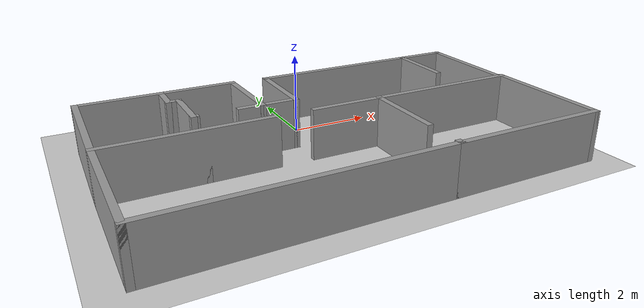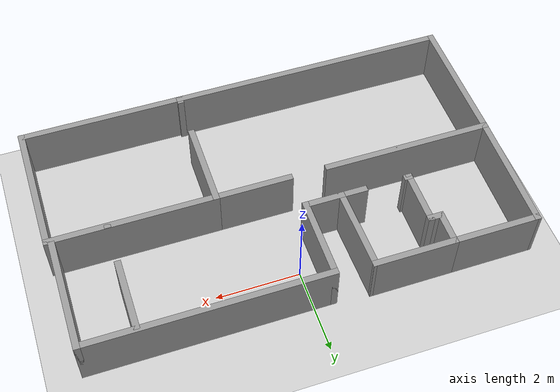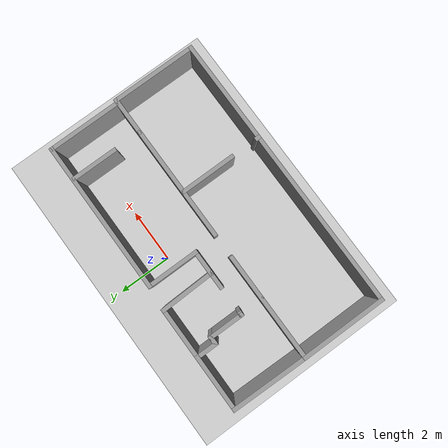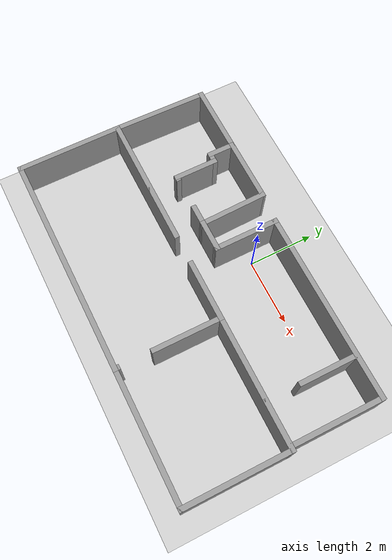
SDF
<?xml version='1.0'?>
<sdf version='1.7'>
  <world name="empty">
    <physics name="1ms" type="ignored">
      <max_step_size>0.001</max_step_size>
      <real_time_factor>1.0</real_time_factor>
    </physics>
    <plugin
      filename="gz-sim-physics-system"
      name="gz::sim::systems::Physics">
    </plugin>
    <plugin
      filename="gz-sim-user-commands-system"
      name="gz::sim::systems::UserCommands">
    </plugin>
    <plugin
      filename="gz-sim-scene-broadcaster-system"
      name="gz::sim::systems::SceneBroadcaster">
    </plugin>
    <plugin
      filename="gz-sim-sensors-system"
      name="gz::sim::systems::Sensors">
      <render_engine>ogre2</render_engine>
    </plugin>
    <plugin
      filename="gz-sim-contact-system"
      name="gz::sim::systems::Contact">
    </plugin>
    <light type="directional" name="sun">
      <cast_shadows>false</cast_shadows>
      <pose>0 0 10 0 0 0</pose>
      <diffuse>0.8 0.8 0.8 1</diffuse>
      <specular>0.2 0.2 0.2 1</specular>
      <attenuation>
        <range>1000</range>
        <constant>0.9</constant>
        <linear>0.01</linear>
        <quadratic>0.001</quadratic>
      </attenuation>
      <direction>-0.5 0.1 -0.9</direction>
    </light>

    <model name="ground_plane">
      <static>true</static>
      <link name="link">
        <collision name="collision">
          <geometry>
            <plane>
              <normal>0 0 1</normal>
              <size>100 100</size>
            </plane>
          </geometry>
        </collision>
        <visual name="visual">
          <geometry>
            <plane>
              <normal>0 0 1</normal>
              <size>100 100</size>
            </plane>
          </geometry>
          <material>
            <script>
              <uri>file://media/materials/scripts/gazebo.material</uri>
            <name>Gazebo/Grey</name>
            </script>
            <ambient>0.8 0.8 0.8 1</ambient>
            <diffuse>0.8 0.8 0.8 1</diffuse>
            <specular>0.8 0.8 0.8 1</specular>
          </material>
        </visual>
      </link>
    </model>

    <model name='living_room'>
      <static>true</static>
      <cast_shadows>false</cast_shadows>
      <pose>0 -1.66125 0 0 -0 0</pose>
      <link name='Wall_10'>
        <collision name='Wall_10_Collision'>
          <geometry>
            <box>
              <size>4.1 0.15 1.25</size>
            </box>
          </geometry>
          <pose>0 0 0.625 0 -0 0</pose>
        </collision>
        <visual name='Wall_10_Visual'>
          <pose>0 0 0.625 0 -0 0</pose>
          <geometry>
            <box>
              <size>4.1 0.15 1.25</size>
            </box>
          </geometry>
          <material>
            <script>
              <uri>file://media/materials/scripts/gazebo.material</uri>
              <name>Gazebo/Grey</name>
            </script>
            <ambient>1 1 1 1</ambient>
          </material>
          <meta>
            <layer>0</layer>
          </meta>
        </visual>
        <pose>-3.27433 -0.1475 0 0 -0 0</pose>
      </link>
      <link name='Wall_17'>
        <collision name='Wall_17_Collision'>
          <geometry>
            <box>
              <size>6.8 0.15 1.25</size>
            </box>
          </geometry>
          <pose>0 0 0.625 0 -0 0</pose>
        </collision>
        <visual name='Wall_17_Visual'>
          <pose>0 0 0.625 0 -0 0</pose>
          <geometry>
            <box>
              <size>6.8 0.15 1.25</size>
            </box>
          </geometry>
          <material>
            <script>
              <uri>file://media/materials/scripts/gazebo.material</uri>
              <name>Gazebo/Grey</name>
            </script>
            <ambient>1 1 1 1</ambient>
          </material>
          <meta>
            <layer>0</layer>
          </meta>
        </visual>
        <pose>-1.92433 -3.2475 0 0 -0 0</pose>
      </link>
      <link name='Wall_20'>
        <pose>1.40067 -1.6975 0 0 -0 1.5708</pose>
        <visual name='Wall_20_Visual_0'>
          <pose>-1.5175 0 0.625 0 -0 0</pose>
          <geometry>
            <box>
              <size>0.215 0.15 1.25</size>
            </box>
          </geometry>
          <material>
            <script>
              <uri>file://media/materials/scripts/gazebo.material</uri>
              <name>Gazebo/Grey</name>
            </script>
            <ambient>1 1 1 1</ambient>
          </material>
          <meta>
            <layer>0</layer>
          </meta>
        </visual>
        <collision name='Wall_20_Collision_0'>
          <geometry>
            <box>
              <size>0.215 0.15 1.25</size>
            </box>
          </geometry>
          <pose>-1.5175 0 0.625 0 -0 0</pose>
        </collision>
        <visual name='Wall_20_Visual_1'>
          <pose>0.5575 0 0.625 0 -0 0</pose>
          <geometry>
            <box>
              <size>2.135 0.15 1.25</size>
            </box>
          </geometry>
          <material>
            <script>
              <uri>file://media/materials/scripts/gazebo.material</uri>
              <name>Gazebo/Grey</name>
            </script>
            <ambient>1 1 1 1</ambient>
          </material>
          <meta>
            <layer>0</layer>
          </meta>
        </visual>
        <collision name='Wall_20_Collision_1'>
          <geometry>
            <box>
              <size>2.135 0.15 1.25</size>
            </box>
          </geometry>
          <pose>0.5575 0 0.625 0 -0 0</pose>
        </collision>
      </link>
      <link name='Wall_21'>
        <collision name='Wall_21_Collision'>
          <geometry>
            <box>
              <size>1.9 0.15 1.25</size>
            </box>
          </geometry>
          <pose>0 0 0.625 0 -0 0</pose>
        </collision>
        <visual name='Wall_21_Visual'>
          <pose>0 0 0.625 0 -0 0</pose>
          <geometry>
            <box>
              <size>1.9 0.15 1.25</size>
            </box>
          </geometry>
          <material>
            <script>
              <uri>file://media/materials/scripts/gazebo.material</uri>
              <name>Gazebo/Grey</name>
            </script>
            <ambient>1 1 1 1</ambient>
          </material>
          <meta>
            <layer>0</layer>
          </meta>
        </visual>
        <pose>0.525668 -0.1475 0 0 -0 3.14159</pose>
      </link>
      <link name='Wall_23'>
        <collision name='Wall_23_Collision'>
          <geometry>
            <box>
              <size>4 0.15 1.25</size>
            </box>
          </geometry>
          <pose>0 0 0.625 0 -0 0</pose>
        </collision>
        <visual name='Wall_23_Visual'>
          <pose>0 0 0.625 0 -0 0</pose>
          <geometry>
            <box>
              <size>4 0.15 1.25</size>
            </box>
          </geometry>
          <material>
            <script>
              <uri>file://media/materials/scripts/gazebo.material</uri>
              <name>Gazebo/Grey</name>
            </script>
            <ambient>1 1 1 1</ambient>
          </material>
          <meta>
            <layer>0</layer>
          </meta>
        </visual>
        <pose>3.32567 -3.2475 0 0 -0 0</pose>
      </link>
      <link name='Wall_24'>
        <collision name='Wall_24_Collision'>
          <geometry>
            <box>
              <size>3.25 0.15 1.25</size>
            </box>
          </geometry>
          <pose>0 0 0.625 0 -0 0</pose>
        </collision>
        <visual name='Wall_24_Visual'>
          <pose>0 0 0.625 0 -0 0</pose>
          <geometry>
            <box>
              <size>3.25 0.15 1.25</size>
            </box>
          </geometry>
          <material>
            <script>
              <uri>file://media/materials/scripts/gazebo.material</uri>
              <name>Gazebo/Grey</name>
            </script>
            <ambient>1 1 1 1</ambient>
          </material>
          <meta>
            <layer>0</layer>
          </meta>
        </visual>
        <pose>5.25067 -1.6975 0 0 -0 1.5708</pose>
      </link>
      <link name='Wall_25'>
        <collision name='Wall_25_Collision'>
          <geometry>
            <box>
              <size>4 0.15 1.25</size>
            </box>
          </geometry>
          <pose>0 0 0.625 0 -0 0</pose>
        </collision>
        <visual name='Wall_25_Visual'>
          <pose>0 0 0.625 0 -0 0</pose>
          <geometry>
            <box>
              <size>4 0.15 1.25</size>
            </box>
          </geometry>
          <material>
            <script>
              <uri>file://media/materials/scripts/gazebo.material</uri>
              <name>Gazebo/Grey</name>
            </script>
            <ambient>1 1 1 1</ambient>
          </material>
          <meta>
            <layer>0</layer>
          </meta>
        </visual>
        <pose>3.32567 -0.1475 0 0 -0 3.14159</pose>
      </link>
      <link name='Wall_33'>
        <pose>-2.12433 0.7025 0 0 -0 3.14159</pose>
        <visual name='Wall_33_Visual_0'>
          <pose>-0.551716 0 0.625 0 -0 0</pose>
          <geometry>
            <box>
              <size>0.696567 0.15 1.25</size>
            </box>
          </geometry>
          <material>
            <script>
              <uri>file://media/materials/scripts/gazebo.material</uri>
              <name>Gazebo/Grey</name>
            </script>
            <ambient>1 1 1 1</ambient>
          </material>
          <meta>
            <layer>0</layer>
          </meta>
        </visual>
        <collision name='Wall_33_Collision_0'>
          <geometry>
            <box>
              <size>0.696567 0.15 1.25</size>
            </box>
          </geometry>
          <pose>-0.551716 0 0.625 0 -0 0</pose>
        </collision>
        <visual name='Wall_33_Visual_1'>
          <pose>0.798284 0 0.625 0 -0 0</pose>
          <geometry>
            <box>
              <size>0.203433 0.15 1.25</size>
            </box>
          </geometry>
          <material>
            <script>
              <uri>file://media/materials/scripts/gazebo.material</uri>
              <name>Gazebo/Grey</name>
            </script>
            <ambient>1 1 1 1</ambient>
          </material>
          <meta>
            <layer>0</layer>
          </meta>
        </visual>
        <collision name='Wall_33_Collision_1'>
          <geometry>
            <box>
              <size>0.203433 0.15 1.25</size>
            </box>
          </geometry>
          <pose>0.798284 0 0.625 0 -0 0</pose>
        </collision>
      </link>
      <link name='Wall_35'>
        <pose>-2.94933 0.2775 0 0 -0 -1.5708</pose>
        <visual name='Wall_35_Visual_0'>
          <pose>-0.477932 0 0.625 0 -0 0</pose>
          <geometry>
            <box>
              <size>0.044137 0.15 1.25</size>
            </box>
          </geometry>
          <material>
            <script>
              <uri>file://media/materials/scripts/gazebo.material</uri>
              <name>Gazebo/Grey</name>
            </script>
            <ambient>1 1 1 1</ambient>
          </material>
          <meta>
            <layer>0</layer>
          </meta>
        </visual>
        <collision name='Wall_35_Collision_0'>
          <geometry>
            <box>
              <size>0.044137 0.15 1.25</size>
            </box>
          </geometry>
          <pose>-0.477932 0 0.625 0 -0 0</pose>
        </collision>
        <visual name='Wall_35_Visual_1'>
          <pose>0.472068 0 0.625 0 -0 0</pose>
          <geometry>
            <box>
              <size>0.055863 0.15 1.25</size>
            </box>
          </geometry>
          <material>
            <script>
              <uri>file://media/materials/scripts/gazebo.material</uri>
              <name>Gazebo/Grey</name>
            </script>
            <ambient>1 1 1 1</ambient>
          </material>
          <meta>
            <layer>0</layer>
          </meta>
        </visual>
        <collision name='Wall_35_Collision_1'>
          <geometry>
            <box>
              <size>0.055863 0.15 1.25</size>
            </box>
          </geometry>
          <pose>0.472068 0 0.625 0 -0 0</pose>
        </collision>
      </link>
      <link name='Wall_38'>
        <collision name='Wall_38_Collision'>
          <geometry>
            <box>
              <size>1.36 0.15 1.25</size>
            </box>
          </geometry>
          <pose>0 0 0.625 0 -0 0</pose>
        </collision>
        <visual name='Wall_38_Visual'>
          <pose>0 0 0.625 0 -0 0</pose>
          <geometry>
            <box>
              <size>1.36 0.15 1.25</size>
            </box>
          </geometry>
          <material>
            <script>
              <uri>file://media/materials/scripts/gazebo.material</uri>
              <name>Gazebo/Grey</name>
            </script>
            <ambient>1 1 1 1</ambient>
          </material>
          <meta>
            <layer>0</layer>
          </meta>
        </visual>
        <pose>-2.94933 1.3075 0 0 -0 1.5708</pose>
      </link>
      <link name='Wall_42'>
        <collision name='Wall_42_Collision'>
          <geometry>
            <box>
              <size>0.4 0.15 1.25</size>
            </box>
          </geometry>
          <pose>0 0 0.625 0 -0 0</pose>
        </collision>
        <visual name='Wall_42_Visual'>
          <pose>0 0 0.625 0 -0 0</pose>
          <geometry>
            <box>
              <size>0.4 0.15 1.25</size>
            </box>
          </geometry>
          <material>
            <script>
              <uri>file://media/materials/scripts/gazebo.material</uri>
              <name>Gazebo/Grey</name>
            </script>
            <ambient>1 1 1 1</ambient>
          </material>
          <meta>
            <layer>0</layer>
          </meta>
        </visual>
        <pose>-3.07433 1.9125 0 0 -0 3.14159</pose>
      </link>
      <link name='Wall_45'>
        <collision name='Wall_45_Collision'>
          <geometry>
            <box>
              <size>0.87 0.15 1.25</size>
            </box>
          </geometry>
          <pose>0 0 0.625 0 -0 0</pose>
        </collision>
        <visual name='Wall_45_Visual'>
          <pose>0 0 0.625 0 -0 0</pose>
          <geometry>
            <box>
              <size>0.87 0.15 1.25</size>
            </box>
          </geometry>
          <material>
            <script>
              <uri>file://media/materials/scripts/gazebo.material</uri>
              <name>Gazebo/Grey</name>
            </script>
            <ambient>1 1 1 1</ambient>
          </material>
          <meta>
            <layer>0</layer>
          </meta>
        </visual>
        <pose>-3.19933 2.2725 0 0 -0 1.5708</pose>
      </link>
      <link name='Wall_52'>
        <collision name='Wall_52_Collision'>
          <geometry>
            <box>
              <size>2.15 0.15 1.25</size>
            </box>
          </geometry>
          <pose>0 0 0.625 0 -0 0</pose>
        </collision>
        <visual name='Wall_52_Visual'>
          <pose>0 0 0.625 0 -0 0</pose>
          <geometry>
            <box>
              <size>2.15 0.15 1.25</size>
            </box>
          </geometry>
          <material>
            <script>
              <uri>file://media/materials/scripts/gazebo.material</uri>
              <name>Gazebo/Grey</name>
            </script>
            <ambient>1 1 1 1</ambient>
          </material>
          <meta>
            <layer>0</layer>
          </meta>
        </visual>
        <pose>-4.19933 2.6325 0 0 -0 3.14159</pose>
      </link>
      <link name='Wall_54'>
        <collision name='Wall_54_Collision'>
          <geometry>
            <box>
              <size>2.93045 0.15 1.25</size>
            </box>
          </geometry>
          <pose>0 0 0.625 0 -0 0</pose>
        </collision>
        <visual name='Wall_54_Visual'>
          <pose>0 0 0.625 0 -0 0</pose>
          <geometry>
            <box>
              <size>2.93045 0.15 1.25</size>
            </box>
          </geometry>
          <material>
            <script>
              <uri>file://media/materials/scripts/gazebo.material</uri>
              <name>Gazebo/Grey</name>
            </script>
            <ambient>1 1 1 1</ambient>
          </material>
          <meta>
            <layer>0</layer>
          </meta>
        </visual>
        <pose>-5.22433 1.2425 0 0 -0 -1.58878</pose>
      </link>
      <link name='Wall_60'>
        <collision name='Wall_60_Collision'>
          <geometry>
            <box>
              <size>2 0.15 1.25</size>
            </box>
          </geometry>
          <pose>0 0 0.625 0 -0 0</pose>
        </collision>
        <visual name='Wall_60_Visual'>
          <pose>0 0 0.625 0 -0 0</pose>
          <geometry>
            <box>
              <size>2 0.15 1.25</size>
            </box>
          </geometry>
          <material>
            <script>
              <uri>file://media/materials/scripts/gazebo.material</uri>
              <name>Gazebo/Grey</name>
            </script>
            <ambient>1 1 1 1</ambient>
          </material>
          <meta>
            <layer>0</layer>
          </meta>
        </visual>
        <pose>-2.27433 2.6325 0 0 -0 0</pose>
      </link>
      <link name='Wall_61'>
        <collision name='Wall_61_Collision'>
          <geometry>
            <box>
              <size>2.08065 0.15 1.25</size>
            </box>
          </geometry>
          <pose>0 0 0.625 0 -0 0</pose>
        </collision>
        <visual name='Wall_61_Visual'>
          <pose>0 0 0.625 0 -0 0</pose>
          <geometry>
            <box>
              <size>2.08065 0.15 1.25</size>
            </box>
          </geometry>
          <material>
            <script>
              <uri>file://media/materials/scripts/gazebo.material</uri>
              <name>Gazebo/Grey</name>
            </script>
            <ambient>1 1 1 1</ambient>
          </material>
          <meta>
            <layer>0</layer>
          </meta>
        </visual>
        <pose>-1.32433 1.6675 0 0 -0 -1.54489</pose>
      </link>
      <link name='Wall_63'>
        <collision name='Wall_63_Collision'>
          <geometry>
            <box>
              <size>1 0.15 1.25</size>
            </box>
          </geometry>
          <pose>0 0 0.625 0 -0 0</pose>
        </collision>
        <visual name='Wall_63_Visual'>
          <pose>0 0 0.625 0 -0 0</pose>
          <geometry>
            <box>
              <size>1 0.15 1.25</size>
            </box>
          </geometry>
          <material>
            <script>
              <uri>file://media/materials/scripts/gazebo.material</uri>
              <name>Gazebo/Grey</name>
            </script>
            <ambient>1 1 1 1</ambient>
          </material>
          <meta>
            <layer>0</layer>
          </meta>
        </visual>
        <pose>-0.874332 0.7025 0 0 -0 0</pose>
      </link>
      <link name='Wall_64'>
        <collision name='Wall_64_Collision'>
          <geometry>
            <box>
              <size>2 0.15 1.25</size>
            </box>
          </geometry>
          <pose>0 0 0.625 0 -0 0</pose>
        </collision>
        <visual name='Wall_64_Visual'>
          <pose>0 0 0.625 0 -0 0</pose>
          <geometry>
            <box>
              <size>2 0.15 1.25</size>
            </box>
          </geometry>
          <material>
            <script>
              <uri>file://media/materials/scripts/gazebo.material</uri>
              <name>Gazebo/Grey</name>
            </script>
            <ambient>1 1 1 1</ambient>
          </material>
          <meta>
            <layer>0</layer>
          </meta>
        </visual>
        <pose>-0.449332 1.6275 0 0 -0 1.5708</pose>
      </link>
      <link name='Wall_65'>
        <collision name='Wall_65_Collision'>
          <geometry>
            <box>
              <size>5.75 0.15 1.25</size>
            </box>
          </geometry>
          <pose>0 0 0.625 0 -0 0</pose>
        </collision>
        <visual name='Wall_65_Visual'>
          <pose>0 0 0.625 0 -0 0</pose>
          <geometry>
            <box>
              <size>5.75 0.15 1.25</size>
            </box>
          </geometry>
          <material>
            <script>
              <uri>file://media/materials/scripts/gazebo.material</uri>
              <name>Gazebo/Grey</name>
            </script>
            <ambient>1 1 1 1</ambient>
          </material>
          <meta>
            <layer>0</layer>
          </meta>
        </visual>
        <pose>2.35067 2.5525 0 0 -0 0</pose>
      </link>
      <link name='Wall_66'>
        <collision name='Wall_66_Collision'>
          <geometry>
            <box>
              <size>2.75 0.15 1.25</size>
            </box>
          </geometry>
          <pose>0 0 0.625 0 -0 0</pose>
        </collision>
        <visual name='Wall_66_Visual'>
          <pose>0 0 0.625 0 -0 0</pose>
          <geometry>
            <box>
              <size>2.75 0.15 1.25</size>
            </box>
          </geometry>
          <material>
            <script>
              <uri>file://media/materials/scripts/gazebo.material</uri>
              <name>Gazebo/Grey</name>
            </script>
            <ambient>1 1 1 1</ambient>
          </material>
          <meta>
            <layer>0</layer>
          </meta>
        </visual>
        <pose>5.15067 1.2525 0 0 -0 -1.5708</pose>
      </link>
      <link name='Wall_68'>
        <pose>3.89257 1.1921 0 0 -0 -1.5708</pose>
        <visual name='Wall_68_Visual_0'>
          <pose>-0.499039 0 0.625 0 -0 0</pose>
          <geometry>
            <box>
              <size>1.75192 0.15 1.25</size>
            </box>
          </geometry>
          <material>
            <script>
              <uri>file://media/materials/scripts/gazebo.material</uri>
              <name>Gazebo/Grey</name>
            </script>
            <ambient>1 1 1 1</ambient>
          </material>
          <meta>
            <layer>0</layer>
          </meta>
        </visual>
        <collision name='Wall_68_Collision_0'>
          <geometry>
            <box>
              <size>1.75192 0.15 1.25</size>
            </box>
          </geometry>
          <pose>-0.499039 0 0.625 0 -0 0</pose>
        </collision>
        <visual name='Wall_68_Visual_1'>
          <pose>1.32596 0 0.625 0 -0 0</pose>
          <geometry>
            <box>
              <size>0.098078 0.15 1.25</size>
            </box>
          </geometry>
          <material>
            <script>
              <uri>file://media/materials/scripts/gazebo.material</uri>
              <name>Gazebo/Grey</name>
            </script>
            <ambient>1 1 1 1</ambient>
          </material>
          <meta>
            <layer>0</layer>
          </meta>
        </visual>
        <collision name='Wall_68_Collision_1'>
          <geometry>
            <box>
              <size>0.098078 0.15 1.25</size>
            </box>
          </geometry>
          <pose>1.32596 0 0.625 0 -0 0</pose>
        </collision>
      </link>
      <link name='Wall_9'>
        <collision name='Wall_9_Collision'>
          <geometry>
            <box>
              <size>3.25 0.15 1.25</size>
            </box>
          </geometry>
          <pose>0 0 0.625 0 -0 0</pose>
        </collision>
        <visual name='Wall_9_Visual'>
          <pose>0 0 0.625 0 -0 0</pose>
          <geometry>
            <box>
              <size>3.25 0.15 1.25</size>
            </box>
          </geometry>
          <material>
            <script>
              <uri>file://media/materials/scripts/gazebo.material</uri>
              <name>Gazebo/Grey</name>
            </script>
            <ambient>1 1 1 1</ambient>
          </material>
          <meta>
            <layer>0</layer>
          </meta>
        </visual>
        <pose>-5.24933 -1.6975 0 0 -0 1.5708</pose>
      </link>
      <static>1</static>
    </model>
  </world>
</sdf>
